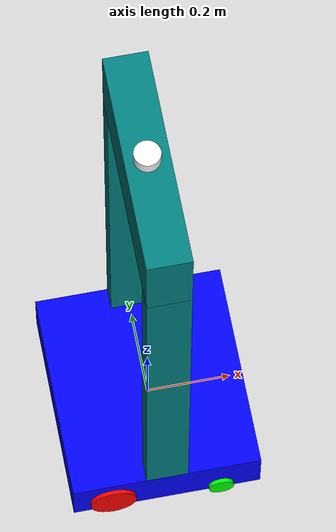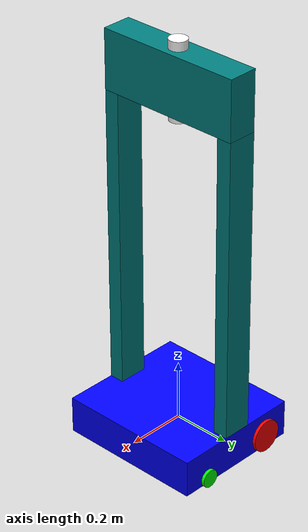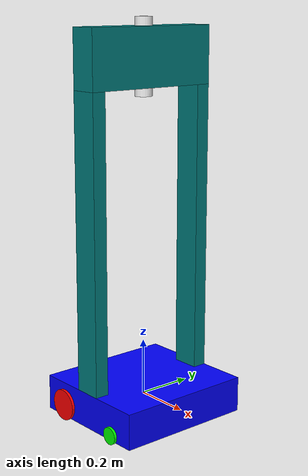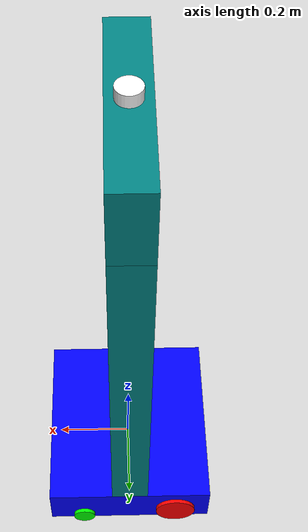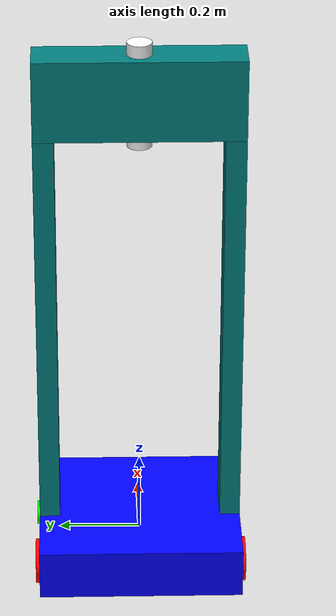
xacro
<?xml version="1.0"?>

<robot xmlns:xacro="http://www.ros.org/wiki/xacro" name="lebot">

    <xacro:property name="base_width" value=".50"/>
    <xacro:property name="base_height" value=".125"/>
    <xacro:property name="base_depth" value=".45"/>
    <xacro:property name="base_mass" value="2.0"/>

    <xacro:property name="top_block_width" value=".50"/>
    <xacro:property name="top_block_height" value="0.20"/>
    <xacro:property name="top_block_depth" value="0.10"/>
    <xacro:property name="top_block_mass" value="0.5"/>

    <xacro:property name="side_block_width" value="0.050"/>
    <xacro:property name="side_block_height" value="${1.10-(top_block_height-base_height)}"/>
    <xacro:property name="side_block_depth" value="0.10"/>
    <xacro:property name="support_mass" value="0.3"/>

    <xacro:property name="drive_wheel_rad" value=".055"/>
    <xacro:property name="wheel_mass" value="0.2"/>
    <xacro:property name="wheel_len" value=".01"/>
    <xacro:property name="supp_wheel_rad" value=".03"/>
    <xacro:property name="supp_wheel_mass" value="0.1"/>
    <xacro:property name="wheel_offset" value=".01"/>
    <xacro:property name="drive_wheel_posZ" value="-${(((base_height/2)+wheel_offset)-(drive_wheel_rad*2))+(drive_wheel_rad)}"/>
    <xacro:property name="supp_wheel_posZ" value="-${(((base_height/2)+wheel_offset)-(supp_wheel_rad*2))+(supp_wheel_rad)}"/>
    <xacro:property name="wheel_posY" value="${base_width/2 + wheel_len/2}"/>

    <xacro:property name="sensor_rad" value=".03"/>
    <xacro:property name="sensor_len" value=".03"/>
    <xacro:property name="sensor_mass" value="0.05"/>

    <xacro:property name="PI" value="3.1415"/>

    <material name="red">
        <color rgba="1 0 0 1"/>
    </material>
    <material name="green">
        <color rgba="0 1 0 1"/>
    </material>
    <material name="teal">
        <color rgba="0 0.5 .5 1"/>
    </material>
    <material name="white">
        <color rgba="1 1 1 1"/>
    </material>

    <link name="base_link">
        <visual>
            <origin xyz="0 0 0" rpy="0 0 0"/>
            <geometry>
                <box size="${base_depth} ${base_width} ${base_height}"/>
            </geometry>
            <material name="blue">
                <color rgba="0 0 1 1"/>
            </material>
        </visual>
        <collision><geometry><box size="${base_depth} ${base_width} ${base_height}"/></geometry></collision>
        <inertial>
            <origin xyz="0 0 0" rpy="0 0 0"/>
            <mass value="${base_mass}"/>
            <inertia
                ixx="${base_mass/12.0 * (base_width*base_width + base_height*base_height)}"
                iyy="${base_mass/12.0 * (base_depth*base_depth + base_height*base_height)}"
                izz="${base_mass/12.0 * (base_depth*base_depth + base_width*base_width)}"
                ixy="0" ixz="0" iyz="0"/>
        </inertial>
    </link>

    <link name="left_wheel_link">
        <visual>
            <origin xyz="0 0 0" rpy="0 0 0"/>
            <geometry>
                <cylinder radius="${drive_wheel_rad}" length="${wheel_len}"/>
            </geometry>
            <material name="red"/>
        </visual>
       <collision><geometry><cylinder radius="${drive_wheel_rad}" length="${wheel_len}"/></geometry></collision>
       <inertial>
            <origin xyz="0 0 0" rpy="0 0 0"/>
            <mass value="${wheel_mass}"/>
            <inertia
                ixx="${wheel_mass/12.0 * (3*drive_wheel_rad*drive_wheel_rad + wheel_len*wheel_len)}"
                iyy="${wheel_mass/12.0 * (3*drive_wheel_rad*drive_wheel_rad + wheel_len*wheel_len)}"
                izz="${wheel_mass/2.0 * drive_wheel_rad*drive_wheel_rad}"
                ixy="0" ixz="0" iyz="0"/>
        </inertial>
    </link>

    <link name="right_wheel_link">
        <visual>
            <origin xyz="0 0 0" rpy="0 0 0"/>
            <geometry>
                <cylinder radius="${drive_wheel_rad}" length="${wheel_len}"/>
            </geometry>
            <material name="red"/>
        </visual>
        <collision><geometry><cylinder radius="${drive_wheel_rad}" length="${wheel_len}"/></geometry></collision>
        <inertial>
            <origin xyz="0 0 0" rpy="0 0 0"/>
            <mass value="${wheel_mass}"/>
            <inertia
                ixx="${wheel_mass/12.0 * (3*drive_wheel_rad*drive_wheel_rad + wheel_len*wheel_len)}"
                iyy="${wheel_mass/12.0 * (3*drive_wheel_rad*drive_wheel_rad + wheel_len*wheel_len)}"
                izz="${wheel_mass/2.0 * drive_wheel_rad*drive_wheel_rad}"
                ixy="0" ixz="0" iyz="0"/>
        </inertial>
    </link>

    <link name="right_support_wheel_link">
        <visual>
            <origin xyz="0 0 0" rpy="0 0 0"/>
            <geometry>
                <cylinder radius="${supp_wheel_rad}" length="${wheel_len}"/>
            </geometry>
            <material name="green"/>
        </visual>
        <collision><geometry><cylinder radius="${supp_wheel_rad}" length="${wheel_len}"/></geometry></collision>
        <inertial>
            <origin xyz="0 0 0" rpy="0 0 0"/>
            <mass value="${supp_wheel_mass}"/>
            <inertia
                ixx="${supp_wheel_mass/12.0 * (3*supp_wheel_rad*supp_wheel_rad + wheel_len*wheel_len)}"
                iyy="${supp_wheel_mass/12.0 * (3*supp_wheel_rad*supp_wheel_rad + wheel_len*wheel_len)}"
                izz="${supp_wheel_mass/2.0 * supp_wheel_rad*supp_wheel_rad}"
                ixy="0" ixz="0" iyz="0"/>
        </inertial>
    </link>

    <link name="left_support_wheel_link">
        <visual>
            <origin xyz="0 0 0" rpy="0 0 0"/>
            <geometry>
                <cylinder radius="${supp_wheel_rad}" length="${wheel_len}"/>
            </geometry>
            <material name="green"/>
        </visual>
        <collision><geometry><cylinder radius="${supp_wheel_rad}" length="${wheel_len}"/></geometry></collision>
        <inertial>
            <origin xyz="0 0 0" rpy="0 0 0"/>
            <mass value="${supp_wheel_mass}"/>
            <inertia
                ixx="${supp_wheel_mass/12.0 * (3*supp_wheel_rad*supp_wheel_rad + wheel_len*wheel_len)}"
                iyy="${supp_wheel_mass/12.0 * (3*supp_wheel_rad*supp_wheel_rad + wheel_len*wheel_len)}"
                izz="${supp_wheel_mass/2.0 * supp_wheel_rad*supp_wheel_rad}"
                ixy="0" ixz="0" iyz="0"/>
        </inertial>
    </link>

    <link name="left_support_link">
        <visual>
            <origin xyz="0 0 0" rpy="0 0 0"/>
            <geometry>
                <box size="${side_block_depth} ${side_block_width} ${side_block_height}"/>
            </geometry>
            <material name="teal"/>
        </visual>
        <collision><geometry><box size="${side_block_depth} ${side_block_width} ${side_block_height}"/></geometry></collision>
        <inertial>
            <origin xyz="0 0 0" rpy="0 0 0"/>
            <mass value="${support_mass}"/>
            <inertia
                ixx="${support_mass/12.0 * (side_block_width*side_block_width + side_block_height*side_block_height)}"
                iyy="${support_mass/12.0 * (side_block_depth*side_block_depth + side_block_height*side_block_height)}"
                izz="${support_mass/12.0 * (side_block_depth*side_block_depth + side_block_width*side_block_width)}"
                ixy="0" ixz="0" iyz="0"/>
        </inertial>
    </link>

    <link name="right_support_link">
        <visual>
            <origin xyz="0 0 0" rpy="0 0 0"/>
            <geometry>
                <box size="${side_block_depth} ${side_block_width} ${side_block_height}"/>
            </geometry>
            <material name="teal"/>
        </visual>
        <collision><geometry><box size="${side_block_depth} ${side_block_width} ${side_block_height}"/></geometry></collision>
        <inertial>
            <origin xyz="0 0 0" rpy="0 0 0"/>
            <mass value="${support_mass}"/>
            <inertia
                ixx="${support_mass/12.0 * (side_block_width*side_block_width + side_block_height*side_block_height)}"
                iyy="${support_mass/12.0 * (side_block_depth*side_block_depth + side_block_height*side_block_height)}"
                izz="${support_mass/12.0 * (side_block_depth*side_block_depth + side_block_width*side_block_width)}"
                ixy="0" ixz="0" iyz="0"/>
        </inertial>
    </link>

    <link name="top_block_link">
        <visual>
            <origin xyz="0 0 0" rpy="0 0 0"/>
            <geometry>
                <box size="${top_block_depth} ${top_block_width} ${top_block_height}"/>
            </geometry>
            <material name="teal"/>
        </visual>
        <collision><geometry><box size="${top_block_depth} ${top_block_width} ${top_block_height}"/></geometry></collision>/>
        <inertial>
            <origin xyz="0 0 0" rpy="0 0 0"/>
            <mass value="${top_block_mass}"/>
            <inertia
                ixx="${top_block_mass/12.0 * (top_block_width*top_block_width + top_block_height*top_block_height)}"
                iyy="${top_block_mass/12.0 * (top_block_depth*top_block_depth + top_block_height*top_block_height)}"
                izz="${top_block_mass/12.0 * (top_block_depth*top_block_depth + top_block_width*top_block_width)}"
                ixy="0" ixz="0" iyz="0"/>
        </inertial>
    </link>

    <link name="lidar_link">
        <visual>
            <origin xyz="0 0 0" rpy="0 0 0"/>
            <geometry>
                <cylinder radius="${sensor_rad}" length="${sensor_len}"/>
            </geometry>
            <material name="white"/>
        </visual>
        <collision><geometry><cylinder radius="${sensor_rad}" length="${sensor_len}"/></geometry></collision>
        <inertial>
            <origin xyz="0 0 0" rpy="0 0 0"/>
            <mass value="${sensor_mass}"/>
            <inertia
                ixx="${sensor_mass/12.0 * (3*sensor_rad*sensor_rad + sensor_len*sensor_len)}"
                iyy="${sensor_mass/12.0 * (3*sensor_rad*sensor_rad + sensor_len*sensor_len)}"
                izz="${sensor_mass/2.0 * sensor_rad*sensor_rad}"
                ixy="0" ixz="0" iyz="0"/>
        </inertial>
    </link>

    <link name="camera_link">
        <visual>
            <origin xyz="0 0 0" rpy="0 0 0"/>
            <geometry>
                <cylinder radius="${sensor_rad}" length="${sensor_len}"/>
            </geometry>
            <material name="white"/>
        </visual>
        <collision><geometry><cylinder radius="${sensor_rad}" length="${sensor_len}"/></geometry></collision>/>
        <inertial>
            <origin xyz="0 0 0" rpy="0 0 0"/>
            <mass value="${sensor_mass}"/>
            <inertia
                ixx="${sensor_mass/12.0 * (3*sensor_rad*sensor_rad + sensor_len*sensor_len)}"
                iyy="${sensor_mass/12.0 * (3*sensor_rad*sensor_rad + sensor_len*sensor_len)}"
                izz="${sensor_mass/2.0 * sensor_rad*sensor_rad}"
                ixy="0" ixz="0" iyz="0"/>
        </inertial>
    </link>

    <joint name="base_left_wheel_joint" type="continuous">
        <parent link="base_link"/>
        <child link="left_wheel_link"/>
        <origin xyz="-0.13 ${wheel_posY} ${drive_wheel_posZ}" rpy="${PI/2.0} 0 0"/>
        <axis xyz="0 0 1" />
    </joint>

    <joint name="base_left_support_wheel_joint" type="continuous"> <!-- continuous for kinematics reason-->
        <parent link="base_link"/>
        <child link="left_support_wheel_link"/>
        <origin xyz="0.13 ${wheel_posY} ${supp_wheel_posZ}" rpy="${PI/2.0} 0 0"/>
        <axis xyz="0 0 1" />
    </joint>

    <joint name="base_right_wheel_joint" type="continuous">
        <parent link="base_link"/>
        <child link="right_wheel_link"/>
        <origin xyz="-0.13 -${wheel_posY} ${drive_wheel_posZ}" rpy="${PI/2.0} 0 0"/>
        <axis xyz="0 0 1" />
    </joint>

    <joint name="base_right_support_wheel_joint" type="continuous"> <!-- continuous for kinematics reason-->
        <parent link="base_link"/>
        <child link="right_support_wheel_link"/>
        <origin xyz="0.13 -${wheel_posY} ${supp_wheel_posZ}" rpy="${PI/2.0} 0 0"/>
        <axis xyz="0 0 1" />
    </joint>

    <joint name="base_top_block_joint" type="fixed">
        <parent link="base_link"/>
        <child link="top_block_link"/>
        <origin xyz="0 0 ${side_block_height + (top_block_height/2)+(base_height/2)}" rpy="0 0 0"/>
        <!--axis xyz="0 0 1" /-->
    </joint>

    <joint name="top_block_left_joint" type="fixed">
        <parent link="top_block_link"/>
        <child link="left_support_link"/>
        <origin xyz="0 ${(base_width/2) - (side_block_width/2)} -${(side_block_height/2) + (top_block_height/2)}" rpy="0 0 0"/>
        <!--axis xyz="0 0 1" /-->
    </joint>

    <joint name="top_block_right_joint" type="fixed">
        <parent link="top_block_link"/>
        <child link="right_support_link"/>
        <origin xyz="0 -${(base_width/2) - (side_block_width/2)} -${(side_block_height/2) + (top_block_height/2)}" rpy="0 0 0"/>
        <!--axis xyz="0 0 1" /-->
    </joint>

    <joint name="top_block_lidar_joint" type="fixed">
        <parent link="top_block_link"/>
        <child link="lidar_link"/>
        <origin xyz="0 0 ${(top_block_height)/2 + (sensor_len/2)}" rpy="0 0 0"/>
        <!--axis xyz="0 0 1" /-->
    </joint>

    <joint name="top_block_camera_joint" type="fixed">
        <parent link="top_block_link"/>
        <child link="camera_link"/>
        <origin xyz="0 0 -${(top_block_height)/2 + (sensor_len/2)}" rpy="0 0 0"/>
        <!--axis xyz="0 0 1" /-->
    </joint>

</robot>
